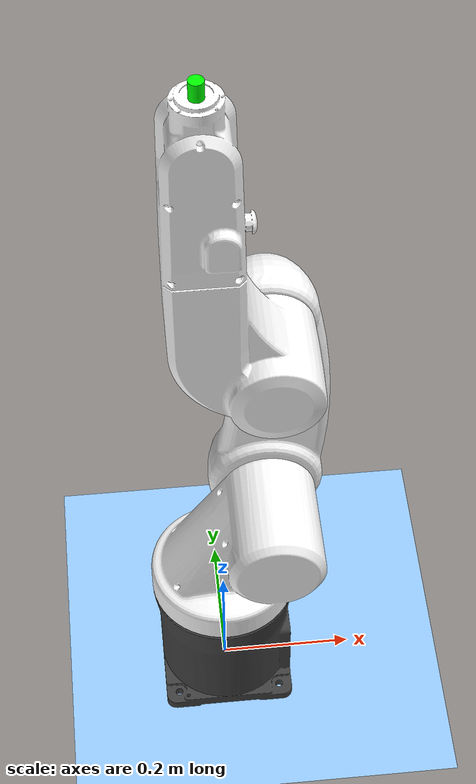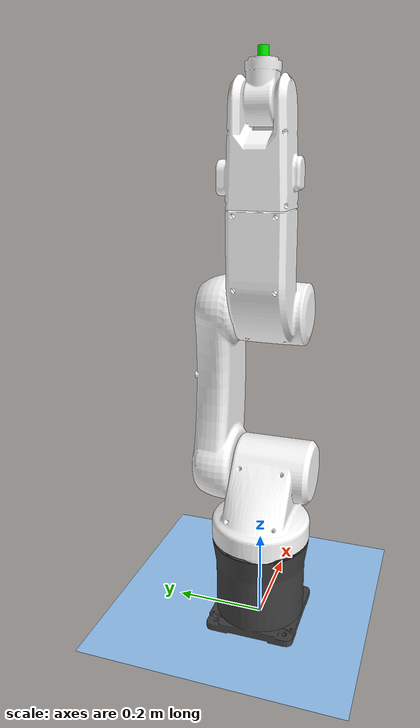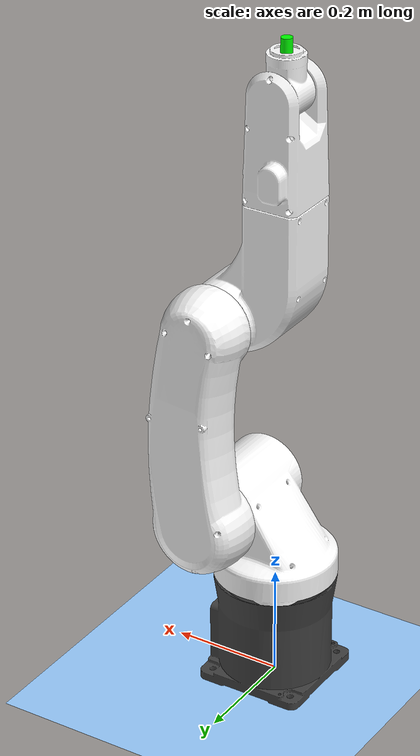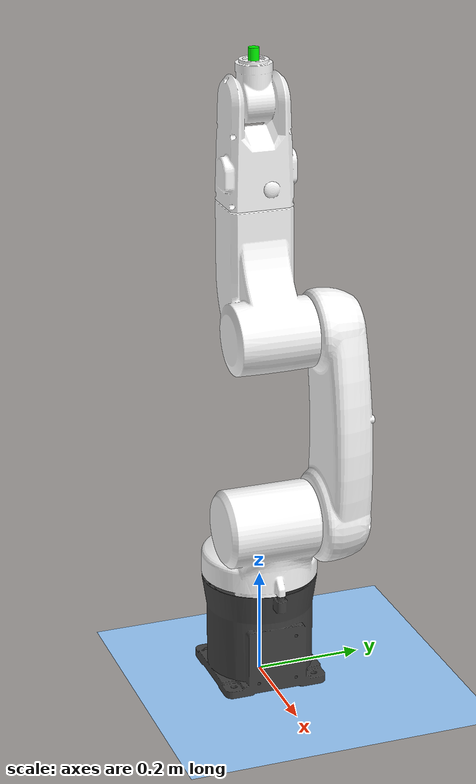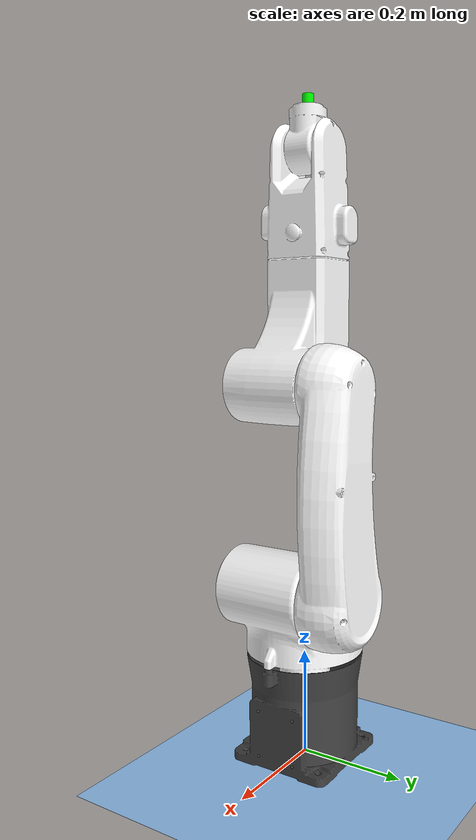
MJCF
<mujoco model="manipulator">
    <compiler angle="radian" meshdir="/home/li-vv/robot_ws/src/kuka/robots/meshes/" />
    <size njmax="500" nconmax="100" />
    <asset>
        <mesh name="base_link" file="base_link.STL" />
        <mesh name="link_1" file="link_1.STL" />
        <mesh name="link_2" file="link_2.STL" />
        <mesh name="link_3" file="link_3.STL" />
    </asset>
    <worldbody>
    	<geom name="ground" type="plane" pos="0 0 0" size="2 2 0.1" rgba="0.6 0.8 1 1" friction="1 0.005 0.0001" />
    	<light name="ambient_light" pos="0 0 2" dir="0 0 -1" diffuse="0.2 0.2 0.2" specular="0.1 0.1 0.1" ambient="0.2 0.2 0.2" directional="true" />

        <geom type="mesh" contype="0" conaffinity="0" group="1" rgba="0.25098 0.25098 0.25098 1" mesh="base_link" />
        <geom type="mesh" rgba="0.25098 0.25098 0.25098 1" mesh="base_link" />
        <body name="link_1" pos="0 0 0.158">
            <inertial pos="0.033215 -0.0082402 0.12846" quat="0.899131 0.0812666 -0.353255 -0.245295" mass="5.7854" diaginertia="0.0457732 0.038138 0.0238257" />
            <joint name="link_1_joint" pos="0 0 0" axis="0 0 1" />
            <geom type="mesh" contype="0" conaffinity="0" group="1" rgba="1 1 1 1" mesh="link_1" />
            <geom type="mesh" rgba="1 1 1 1" mesh="link_1" />
            <body name="link_2" pos="0.062468 0.11617 0.18">
                <inertial pos="0.021249 0.0010698 0.16335" quat="0.731774 -0.00441777 -0.00264645 0.681527" mass="6.2559" diaginertia="0.146809 0.141204 0.0152276" />
                <joint name="link_2_joint" pos="0 0 0" axis="0 1 0" limited="true" range="-2 2" />
                <geom type="mesh" contype="0" conaffinity="0" group="1" rgba="1 1 1 1" mesh="link_2" />
                <geom type="mesh" rgba="1 1 1 1" mesh="link_2" />
                <body name="link_3" pos="0.012532 -0.11717 0.365">
                    <inertial pos="-0.062257 -0.0012327 0.14769" quat="0.548153 0.0890732 0.0521709 0.829984" mass="7.1667" diaginertia="0.164013 0.160813 0.0216148" />
                    <joint name="link_3_joint" pos="0 0 0" axis="0 1 0" limited="true" range="-2 2" />
                    <geom type="mesh" contype="0" conaffinity="0" group="1" rgba="1 1 1 1" mesh="link_3" />
                    <geom type="mesh" rgba="1 1 1 1" mesh="link_3" />
                    <body name="end_effector" pos="-0.090 0 0.48">
        		<geom type="cylinder" size="0.01 0.02" rgba="0 1 0 1" />
    		    </body>
                </body>
            </body>
        </body>
        <!-- Target -->
	<body name="target" pos="0 0 0.01">
    		<geom conaffinity="0" contype="0" name="target" pos="0 0 0" rgba="0.9 0.2 0.2 1" size="0.02" type="sphere"/>
</body>
    </worldbody>
    <actuator>
    	<motor joint="link_1_joint" ctrllimited="true" ctrlrange="-10.0 10.0" gear="10.0" />
    	<motor joint="link_2_joint" ctrllimited="true" ctrlrange="-10.0 10.0" gear="10.0" />
    	<motor joint="link_3_joint" ctrllimited="true" ctrlrange="-10.0 10.0" gear="10.0" />
</actuator>

</mujoco>
